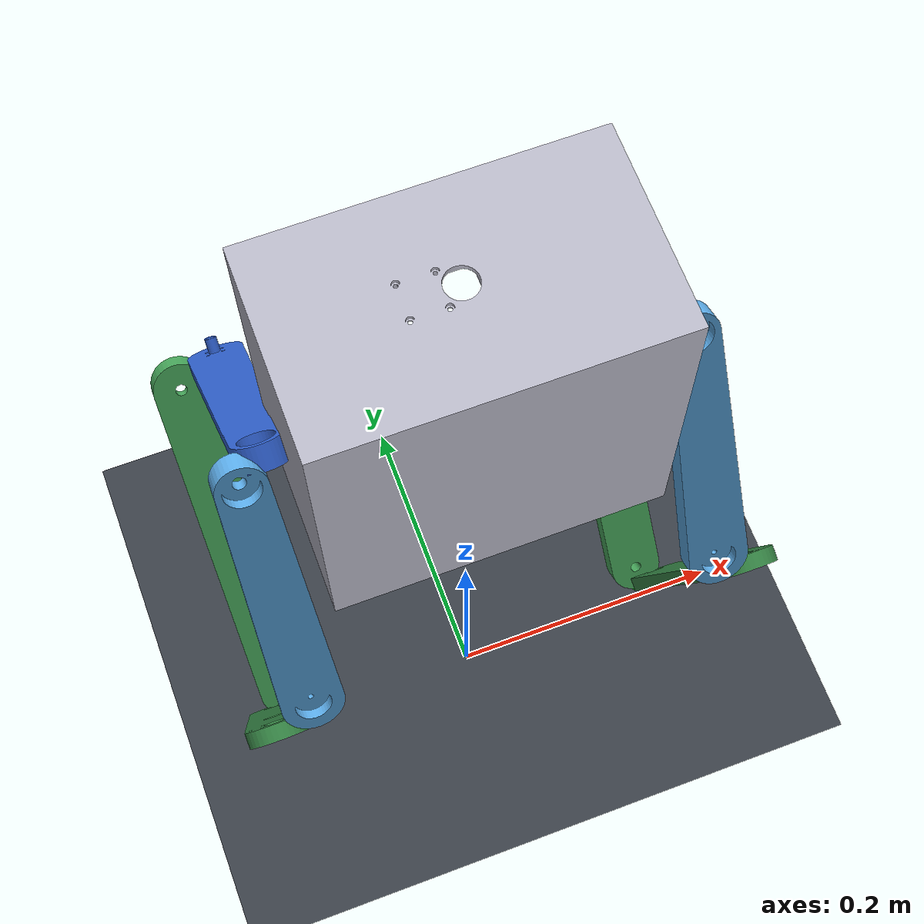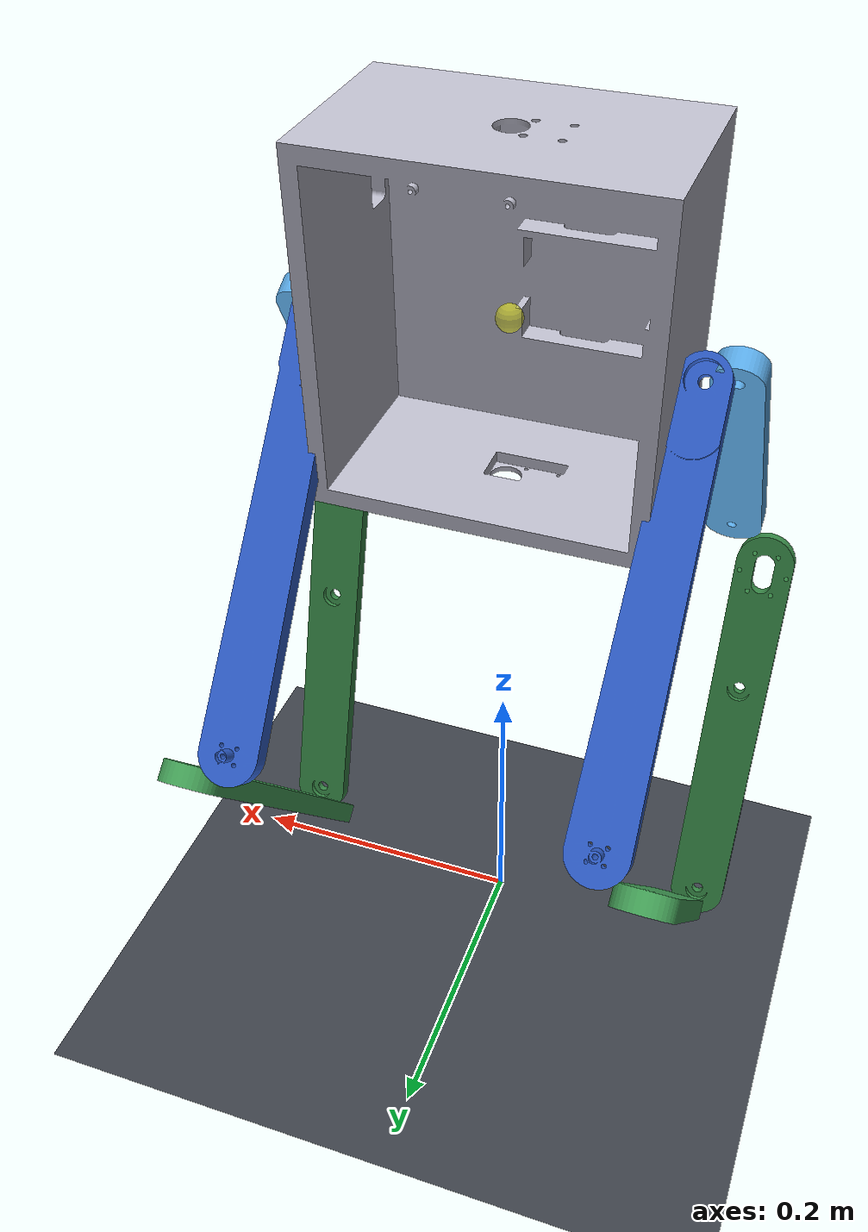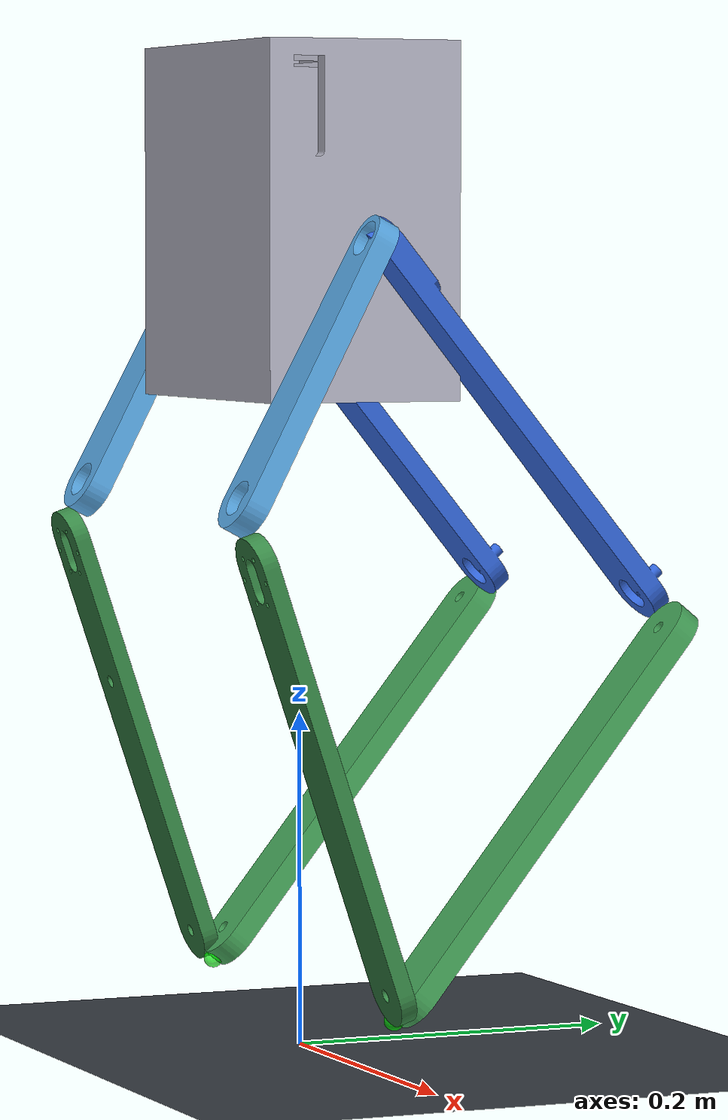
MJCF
<mujoco model="wheel_legged_5bar">
  <compiler angle="radian" meshdir="meshes" autolimits="true"/>

  <option timestep="0.002" gravity="0 0 -9.81" integrator="implicitfast"
          solver="Newton" iterations="100" tolerance="1e-10"/>

  <size njmax="500" nconmax="200"/>

  <visual>
    <headlight diffuse="0.7 0.7 0.7" ambient="0.4 0.4 0.4" specular="0.1 0.1 0.1"/>
    <rgba haze="0.15 0.20 0.25 1"/>
    <global azimuth="120" elevation="-20" offwidth="1200" offheight="900"/>
  </visual>

  <default>
    <default class="link">
      <geom type="mesh" rgba="0.6 0.6 0.65 1" contype="0" conaffinity="0" density="1200"/>
      <joint type="hinge" axis="1 0 0" damping="0.05" armature="0.001"/>
    </default>
    <default class="wheel">
      <geom type="mesh" rgba="0.2 0.2 0.22 1" contype="1" conaffinity="1"
            density="950" friction="3.0 0.01 0.001" condim="6"/>
      <joint type="hinge" axis="1 0 0" damping="0.02" armature="0.005"/>
    </default>
    <default class="hip_actuator">
      <position kp="80" kv="4" ctrlrange="-2.0 2.0" forcerange="-30 30"/>
    </default>
    <default class="wheel_actuator">
      <motor ctrlrange="-8 8" forcerange="-8 8"/>
    </default>
  </default>

  <asset>
    <texture type="skybox" builtin="gradient" rgb1="0.55 0.65 0.80" rgb2="0.10 0.15 0.25" width="256" height="256"/>
    <texture name="grid" type="2d" builtin="checker" rgb1="0.25 0.27 0.30" rgb2="0.20 0.22 0.25" width="300" height="300"/>
    <material name="grid" texture="grid" texrepeat="10 10" reflectance="0.05"/>
    <mesh name="chassis"     file="chassis.stl"     scale="0.001 0.001 0.001"/>
    <mesh name="upper_long"  file="upper_long.stl"  scale="0.001 0.001 0.001"/>
    <mesh name="upper_short" file="upper_short.stl" scale="0.001 0.001 0.001"/>
    <mesh name="lower_a"     file="lower_a.stl"     scale="0.001 0.001 0.001"/>
    <mesh name="lower_b"     file="lower_b.stl"     scale="0.001 0.001 0.001"/>
    <mesh name="wheel"       file="wheel.stl"       scale="0.001 0.001 0.001"/>
  </asset>

  <worldbody>
    <light name="top" pos="0 0 3" dir="0 0 -1" diffuse="0.7 0.7 0.7"/>
    <geom name="floor" type="plane" size="5 5 0.1" material="grid" friction="3.0 0.005 0.0001" condim="3"/>

    <body name="chassis" pos="0 0 0.389" childclass="link">
      <freejoint name="root"/>
      <inertial pos="0 0 0.105" mass="3.5" diaginertia="0.04 0.06 0.05"/>
      <geom class="link" mesh="chassis" rgba="0.72 0.72 0.78 1" contype="1" conaffinity="1"/>
      <site name="imu_site" pos="0 0 0.105" size="0.008" rgba="1 1 0 0.5"/>

      <!-- ============== R SIDE 5-BAR ============== -->
      <body name="UL_R" pos="0.11200 0.00000 0.10500" quat="0.903805 -0.427945 0.000000 0.000000">
        <inertial pos="0 0.147 0" mass="0.30" diaginertia="0.003 0.0003 0.003"/>
        <joint name="hip_UL_R" pos="0 0 0" range="-120 120" ref="0"/>
        <geom class="link" mesh="upper_long" rgba="0.20 0.40 0.85 1"/>

        <body name="LA_R" pos="0.02900 0.29400 0.00000" quat="0.777015 -0.629482 0.000000 0.000000">
          <inertial pos="0 0.149 0" mass="0.25" diaginertia="0.003 0.0003 0.003"/>
          <joint name="knee_KR_R" pos="0 0 0" range="-160 160" ref="0"/>
          <geom class="link" mesh="lower_a" rgba="0.28 0.66 0.36 1"/>
          <site name="foot_LA_R" pos="0 0.298 0" size="0.005" rgba="1 0 0 0.7"/>
        </body>
      </body>

      <body name="US_R" pos="0.12800 0.00000 0.10500" quat="0.514655 -0.857397 0.000000 0.000000">
        <inertial pos="0 0.100 0" mass="0.20" diaginertia="0.001 0.0002 0.001"/>
        <joint name="hip_US_R" pos="0 0 0" range="-120 120" ref="0"/>
        <geom class="link" mesh="upper_short" rgba="0.36 0.68 0.92 1"/>

        <body name="LB_R" pos="0.02500 0.20100 0.00000" quat="0.918639 0.395099 0.000000 0.000000">
          <inertial pos="0 0.149 0" mass="0.25" diaginertia="0.003 0.0003 0.003"/>
          <joint name="knee_KF_R" pos="0 0 0" range="-160 160" ref="0"/>
          <geom class="link" mesh="lower_b" rgba="0.22 0.54 0.28 1"/>

          <body name="wheel_R" pos="-0.01200 0.29800 0.00000" quat="1 0 0 0">
            <inertial pos="0 0 0" mass="0.20" diaginertia="0.00012 0.00018 0.00012"/>
            <joint name="wheel_R_drive" type="hinge" axis="1 0 0"
                   damping="0.02" armature="0.005"/>
            <geom class="wheel" mesh="wheel" rgba="0.20 0.20 0.22 1"/>
            <site name="hub_R" pos="0 0 0" size="0.006" rgba="0 1 0 0.7"/>
          </body>
        </body>
      </body>

      <!-- ============== L SIDE 5-BAR ============== -->
      <body name="UL_L" pos="-0.11200 0.00000 0.10500" quat="0.903805 -0.427945 0.000000 0.000000">
        <inertial pos="0 0.147 0" mass="0.30" diaginertia="0.003 0.0003 0.003"/>
        <joint name="hip_UL_L" pos="0 0 0" range="-120 120" ref="0"/>
        <geom class="link" mesh="upper_long" rgba="0.20 0.40 0.85 1"/>

        <body name="LA_L" pos="-0.02900 0.29400 0.00000" quat="0.777015 -0.629482 0.000000 0.000000">
          <inertial pos="0 0.149 0" mass="0.25" diaginertia="0.003 0.0003 0.003"/>
          <joint name="knee_KR_L" pos="0 0 0" range="-160 160" ref="0"/>
          <geom class="link" mesh="lower_a" rgba="0.28 0.66 0.36 1"/>
          <site name="foot_LA_L" pos="0 0.298 0" size="0.005" rgba="1 0 0 0.7"/>
        </body>
      </body>

      <body name="US_L" pos="-0.12800 0.00000 0.10500" quat="0.514655 -0.857397 0.000000 0.000000">
        <inertial pos="0 0.100 0" mass="0.20" diaginertia="0.001 0.0002 0.001"/>
        <joint name="hip_US_L" pos="0 0 0" range="-120 120" ref="0"/>
        <geom class="link" mesh="upper_short" rgba="0.36 0.68 0.92 1"/>

        <body name="LB_L" pos="-0.02500 0.20100 0.00000" quat="0.918639 0.395099 0.000000 0.000000">
          <inertial pos="0 0.149 0" mass="0.25" diaginertia="0.003 0.0003 0.003"/>
          <joint name="knee_KF_L" pos="0 0 0" range="-160 160" ref="0"/>
          <geom class="link" mesh="lower_b" rgba="0.22 0.54 0.28 1"/>

          <body name="wheel_L" pos="0.01200 0.29800 0.00000" quat="0 0 0 1">
            <inertial pos="0 0 0" mass="0.20" diaginertia="0.00012 0.00018 0.00012"/>
            <joint name="wheel_L_drive" type="hinge" axis="1 0 0"
                   damping="0.02" armature="0.005"/>
            <geom class="wheel" mesh="wheel" rgba="0.20 0.20 0.22 1"/>
            <site name="hub_L" pos="0 0 0" size="0.006" rgba="0 1 0 0.7"/>
          </body>
        </body>
      </body>
    </body>
  </worldbody>

  <equality>
    <!-- 5-bar closure: pin lower-a's tip to the wheel hub -->
    <connect name="loop_R" site1="foot_LA_R" site2="hub_R" active="true" solref="0.005 1"/>
    <connect name="loop_L" site1="foot_LA_L" site2="hub_L" active="true" solref="0.005 1"/>
    <!-- Mechanical coupling: the short upper rod follows the long upper rod
         (hip_US = -hip_UL). Makes each leg a single-DOF up/down mechanism. -->
    <joint name="couple_R" joint1="hip_US_R" joint2="hip_UL_R" polycoef="0 -1 0 0 0" solref="0.005 1"/>
    <joint name="couple_L" joint1="hip_US_L" joint2="hip_UL_L" polycoef="0 -1 0 0 0" solref="0.005 1"/>
  </equality>

  <actuator>
    <!-- One hip motor per side (UL drives, US follows via joint equality) -->
    <position class="hip_actuator" name="motor_hip_R" joint="hip_UL_R"/>
    <position class="hip_actuator" name="motor_hip_L" joint="hip_UL_L"/>
    <!-- One wheel motor per side: torque control for balance + drive -->
    <motor class="wheel_actuator" name="motor_wheel_R" joint="wheel_R_drive"/>
    <motor class="wheel_actuator" name="motor_wheel_L" joint="wheel_L_drive"/>
  </actuator>

  <sensor>
    <jointpos name="qp_UL_R" joint="hip_UL_R"/>
    <jointpos name="qp_US_R" joint="hip_US_R"/>
    <jointpos name="qp_UL_L" joint="hip_UL_L"/>
    <jointpos name="qp_US_L" joint="hip_US_L"/>
    <jointvel name="qv_wheel_R" joint="wheel_R_drive"/>
    <jointvel name="qv_wheel_L" joint="wheel_L_drive"/>
    <framepos    name="chassis_pos"  objtype="body" objname="chassis"/>
    <framequat   name="chassis_quat" objtype="body" objname="chassis"/>
    <gyro        name="imu_gyro"     site="imu_site"/>
    <accelerometer name="imu_acc"    site="imu_site"/>
  </sensor>
</mujoco>
